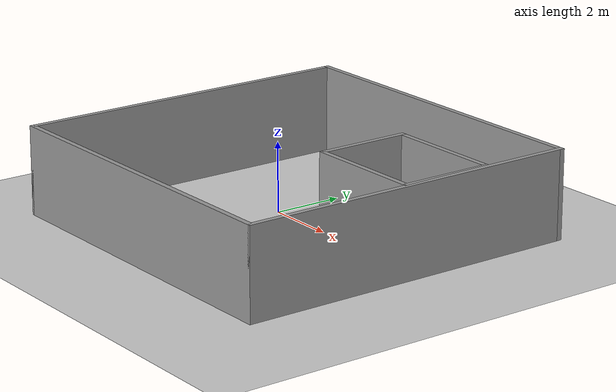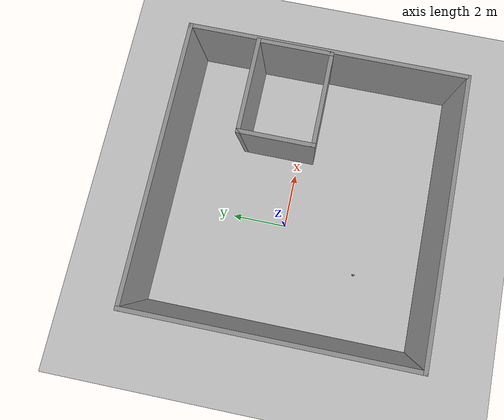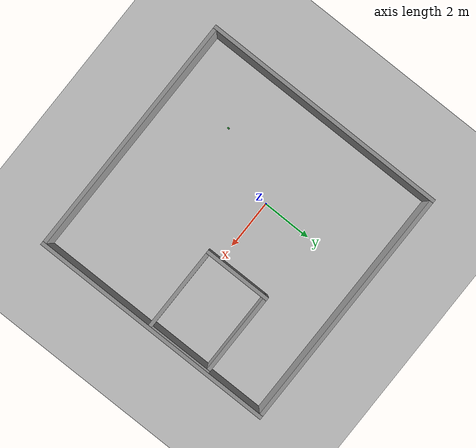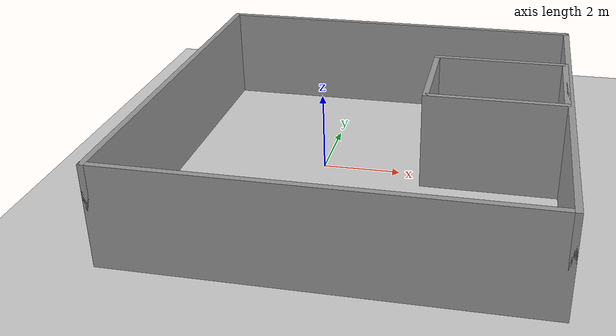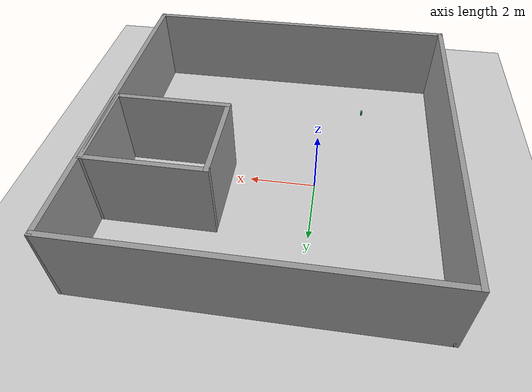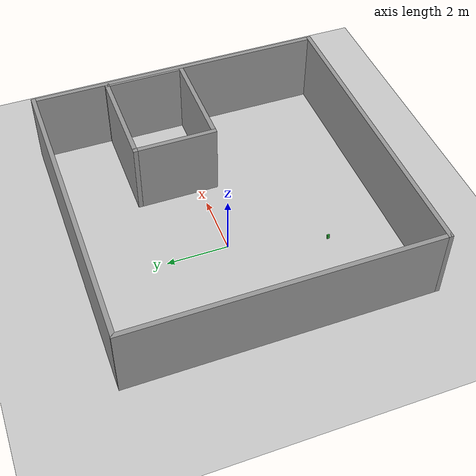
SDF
<sdf version="1.7">
 <world name="default">
  <plugin name="gazebo_ros_state" filename="libgazebo_ros_state.so">
   <ros><namespace>/</namespace></ros>
   <update_rate>10.0</update_rate>
  </plugin>
  <light name="sun" type="directional">
   <pose>0 0 10 0 -0 0</pose>
   <diffuse>0.8 0.8 0.8 1</diffuse>
   <specular>0.2 0.2 0.2 1</specular>
   <attenuation>
    <range>1000</range>
    <constant>0.9</constant>
    <linear>0.01</linear>
    <quadratic>0.001</quadratic>
   </attenuation>
   <direction>-0.5 0.1 -0.9</direction>
   <spot><inner_angle>0</inner_angle><outer_angle>0</outer_angle><falloff>0</falloff></spot>
  </light>
  <model name="ground_plane">
   <static>1</static>
   <link name="link">
    <collision name="collision">
     <geometry><plane><normal>0 0 1</normal><size>100 100</size></plane></geometry>
     <surface><friction><ode><mu>100</mu><mu2>50</mu2></ode></friction></surface>
    </collision>
    <visual name="visual">
     <cast_shadows>0</cast_shadows>
     <geometry><plane><normal>0 0 1</normal><size>100 100</size></plane></geometry>
     <material>
      <script><uri>file://media/materials/scripts/gazebo.material</uri><name>Gazebo/Grey</name></script>
     </material>
    </visual>
   </link>
  </model>
  <gravity>0 0 -9.8</gravity>
  <magnetic_field>6e-06 2.3e-05 -4.2e-05</magnetic_field>
  <atmosphere type="adiabatic"/>
  <physics type="ode">
   <max_step_size>0.001</max_step_size>
   <real_time_factor>1</real_time_factor>
   <real_time_update_rate>1000</real_time_update_rate>
  </physics>
  <scene><ambient>0.4 0.4 0.4 1</ambient><background>0.7 0.7 0.7 1</background><shadows>1</shadows></scene>
  <audio><device>default</device></audio>
  <spherical_coordinates>
   <surface_model>EARTH_WGS84</surface_model>
   <latitude_deg>0</latitude_deg>
   <longitude_deg>0</longitude_deg>
   <elevation>0</elevation>
   <heading_deg>0</heading_deg>
  </spherical_coordinates>
  <model name="minan_demo">
   <pose>1.17181 -0.38037 0 0 -0 0</pose>
   <link name="Wall_10">
    <collision name="Wall_10_Collision">
     <geometry><box><size>10 0.15 2.5</size></box></geometry>
     <pose>0 0 1.25 0 -0 0</pose>
    </collision>
    <visual name="Wall_10_Visual">
     <pose>0 0 1.25 0 -0 0</pose>
     <geometry><box><size>10 0.15 2.5</size></box></geometry>
     <material>
      <script><uri>file://media/materials/scripts/gazebo.material</uri><name>Gazebo/Grey</name></script>
      <ambient>1 1 1 1</ambient>
     </material>
     <meta><layer>0</layer></meta>
    </visual>
    <pose>4.925 0 0 0 -0 1.5708</pose>
   </link>
   <link name="Wall_12">
    <collision name="Wall_12_Collision">
     <geometry><box><size>10 0.15 2.5</size></box></geometry>
     <pose>0 0 1.25 0 -0 0</pose>
    </collision>
    <visual name="Wall_12_Visual">
     <pose>0 0 1.25 0 -0 0</pose>
     <geometry><box><size>10 0.15 2.5</size></box></geometry>
     <material>
      <script><uri>file://media/materials/scripts/gazebo.material</uri><name>Gazebo/Grey</name></script>
      <ambient>1 1 1 1</ambient>
     </material>
     <meta><layer>0</layer></meta>
    </visual>
    <pose>-4.925 0 0 0 -0 1.5708</pose>
   </link>
   <link name="Wall_13">
    <collision name="Wall_13_Collision">
     <geometry><box><size>10 0.15 2.5</size></box></geometry>
     <pose>0 0 1.25 0 -0 0</pose>
    </collision>
    <visual name="Wall_13_Visual">
     <pose>0 0 1.25 0 -0 0</pose>
     <geometry><box><size>10 0.15 2.5</size></box></geometry>
     <material>
      <script><uri>file://media/materials/scripts/gazebo.material</uri><name>Gazebo/Grey</name></script>
      <ambient>1 1 1 1</ambient>
     </material>
     <meta><layer>0</layer></meta>
    </visual>
    <pose>-0 4.925 0 0 -0 0</pose>
   </link>
   <link name="Wall_15">
    <collision name="Wall_15_Collision">
     <geometry><box><size>2.75 0.15 2.5</size></box></geometry>
     <pose>0 0 1.25 0 -0 0</pose>
    </collision>
    <visual name="Wall_15_Visual">
     <pose>0 0 1.25 0 -0 0</pose>
     <geometry><box><size>2.75 0.15 2.5</size></box></geometry>
     <material>
      <script><uri>file://media/materials/scripts/gazebo.material</uri><name>Gazebo/Grey</name></script>
      <ambient>1 1 1 1</ambient>
     </material>
     <meta><layer>0</layer></meta>
    </visual>
    <pose>1.49524 1.1638 0 0 -0 -1.5708</pose>
   </link>
   <link name="Wall_16">
    <collision name="Wall_16_Collision">
     <geometry><box><size>3.5 0.15 2.5</size></box></geometry>
     <pose>0 0 1.25 0 -0 0</pose>
    </collision>
    <visual name="Wall_16_Visual">
     <pose>0 0 1.25 0 -0 0</pose>
     <geometry><box><size>3.5 0.15 2.5</size></box></geometry>
     <material>
      <script><uri>file://media/materials/scripts/gazebo.material</uri><name>Gazebo/Grey</name></script>
      <ambient>1 1 1 1</ambient>
     </material>
     <meta><layer>0</layer></meta>
    </visual>
    <pose>3.17024 -0.136204 0 0 -0 0</pose>
   </link>
   <link name="Wall_17">
    <collision name="Wall_17_Collision">
     <geometry><box><size>2.75 0.15 2.5</size></box></geometry>
     <pose>0 0 1.25 0 -0 0</pose>
    </collision>
    <visual name="Wall_17_Visual">
     <pose>0 0 1.25 0 -0 0</pose>
     <geometry><box><size>2.75 0.15 2.5</size></box></geometry>
     <material>
      <script><uri>file://media/materials/scripts/gazebo.material</uri><name>Gazebo/Grey</name></script>
      <ambient>1 1 1 1</ambient>
     </material>
     <meta><layer>0</layer></meta>
    </visual>
    <pose>4.84525 1.1638 0 0 -0 1.5708</pose>
   </link>
   <link name="Wall_18">
    <collision name="Wall_18_Collision">
     <geometry><box><size>3.5 0.15 2.5</size></box></geometry>
     <pose>0 0 1.25 0 -0 0</pose>
    </collision>
    <visual name="Wall_18_Visual">
     <pose>0 0 1.25 0 -0 0</pose>
     <geometry><box><size>3.5 0.15 2.5</size></box></geometry>
     <material>
      <script><uri>file://media/materials/scripts/gazebo.material</uri><name>Gazebo/Grey</name></script>
      <ambient>1 1 1 1</ambient>
     </material>
     <meta><layer>0</layer></meta>
    </visual>
    <pose>3.17024 2.4638 0 0 -0 3.14159</pose>
   </link>
   <link name="Wall_5">
    <collision name="Wall_5_Collision">
     <geometry><box><size>10 0.15 2.5</size></box></geometry>
     <pose>0 0 1.25 0 -0 0</pose>
    </collision>
    <visual name="Wall_5_Visual">
     <pose>0 0 1.25 0 -0 0</pose>
     <geometry><box><size>10 0.15 2.5</size></box></geometry>
     <material>
      <script><uri>file://media/materials/scripts/gazebo.material</uri><name>Gazebo/Grey</name></script>
      <ambient>1 1 1 1</ambient>
     </material>
     <meta><layer>0</layer></meta>
    </visual>
    <pose>-0 -4.925 0 0 -0 0</pose>
   </link>
   <static>1</static>
  </model>
  <model name="target_book">
   <pose>-1.30 -2.8 0.775 0 0 0</pose>
   <link name="link">
    <inertial>
     <mass>0.2</mass>
     <inertia><ixx>0.001</ixx><ixy>0</ixy><ixz>0</ixz><iyy>0.001</iyy><iyz>0</iyz><izz>0.001</izz></inertia>
    </inertial>
    <collision name="collision">
     <geometry><box><size>0.08 0.15 0.05</size></box></geometry>
     <surface>
      <friction>
       <ode><mu>1000.0</mu><mu2>1000.0</mu2><fdir1>1 0 0</fdir1><slip1>0.0</slip1><slip2>0.0</slip2></ode>
      </friction>
      <contact><ode><kp>1000000.0</kp><kd>1.0</kd><max_vel>0.0</max_vel><min_depth>0.001</min_depth></ode></contact>
     </surface>
    </collision>
    <visual name="visual">
     <geometry><box><size>0.05 0.08 0.15</size></box></geometry>
     <material>
      <script><uri>file://media/materials/scripts/gazebo.material</uri><name>Gazebo/Green</name></script>
     </material>
    </visual>
   </link>
  </model>
 </world>
</sdf>
